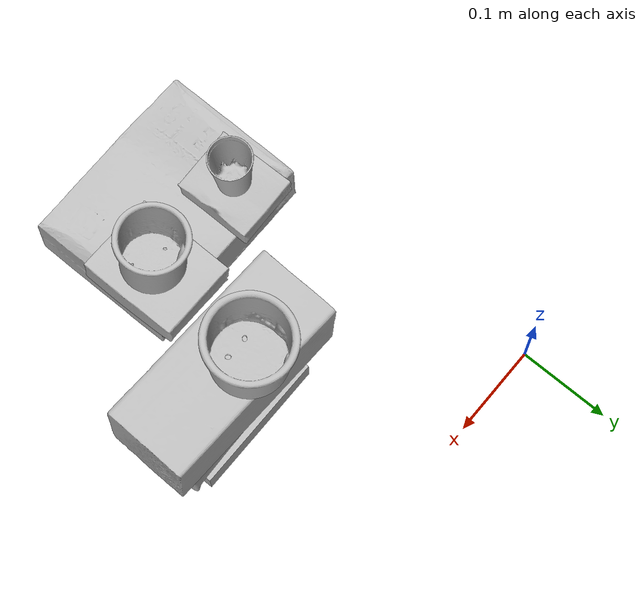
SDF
<?xml version="1.0" ?>
<sdf version="1.4">

  <world name="default">

    <light name="light1" type="point">

      <pose>0 0 1 0 0 0</pose>

      <diffuse>3 3 3 1</diffuse>

      <specular>3 3 3 1</specular>

    </light>

    <light name="light2" type="point">

      <pose>0 0.5 2 0 0 0</pose>

      <diffuse>1 1 1 1</diffuse>

      <specular>1 1 1 1</specular>

    </light>

    <light name="light3" type="point">

      <pose>0 0.5 2 0 0 0</pose>

      <diffuse>3 3 3 1</diffuse>

      <specular>3 3 3 1</specular>

    </light>

    <scene>

      <ambient>0.7 0.7 0.7</ambient>

    </scene>

    <model name="box21">

      <link name="link_box21">

        <collision name="default">

          <geometry>

            <mesh>

              <uri>model://cracker_box/collision_meshes/collision.obj</uri>

              <scale>1.0 1.0 1.0</scale>

            </mesh>

          </geometry>

          <surface>

            <friction>

              <ode>

                <mu>0.5</mu>

                <mu2>0.5</mu2>

              </ode>

            </friction>

          </surface>

        </collision>

        <visual name="default">

          <geometry>

            <mesh>

              <uri>model://cracker_box/visual_meshes/visual.dae</uri>

              <scale>1.0 1.0 1.0</scale>

            </mesh>

          </geometry>

        </visual>

        <inertial>

          <mass>2.590176582336426</mass>

          <pose>0.0009464152390137315 0.00025434247800149024 -0.0017029535956680775 -0.0003162072774594163 -0.011106486806667554 0.0025467954652388498</pose>

          <inertia>

            <ixx>0.0065882523</ixx>

            <iyy>0.0108785</iyy>

            <izz>0.015524619</izz>

            <ixy>0</ixy>

            <ixz>0</ixz>

            <iyz>0</iyz>

          </inertia>

        </inertial>

      </link>

      <pose>0.1198326125741005 -0.36929503083229065 0.03638412058353424 -0.014051527240577052 -0.005015717778087494 0.00038083210782525947</pose>

    </model>

    <model name="box22">

      <link name="link_box22">

        <collision name="default">

          <geometry>

            <mesh>

              <uri>model://gelatin_box/collision_meshes/collision.obj</uri>

              <scale>1.0 1.0 1.0</scale>

            </mesh>

          </geometry>

          <surface>

            <friction>

              <ode>

                <mu>0.5</mu>

                <mu2>0.5</mu2>

              </ode>

            </friction>

          </surface>

        </collision>

        <visual name="default">

          <geometry>

            <mesh>

              <uri>model://gelatin_box/visual_meshes/visual.dae</uri>

              <scale>1.0 1.0 1.0</scale>

            </mesh>

          </geometry>

        </visual>

        <inertial>

          <mass>0.25047940015792847</mass>

          <pose>0.0004319618456065655 0.00011156871914863586 -0.0003640321083366871 -0.0010503719848663328 -0.004755819155031653 0.016440561334722496</pose>

          <inertia>

            <ixx>0.00017681804</ixx>

            <iyy>0.00012630019</iyy>

            <izz>0.0002691564</izz>

            <ixy>0</ixy>

            <ixz>0</ixz>

            <iyz>0</iyz>

          </inertia>

        </inertial>

      </link>

      <pose>0.0705680251121521 -0.3198525607585907 0.08211785554885864 -0.005468137814721039 0.07062875259898165 0.0006597435246020395</pose>

    </model>

    <model name="box23">

      <link name="link_box23">

        <collision name="default">

          <geometry>

            <mesh>

              <uri>model://pudding_box/collision_meshes/collision.obj</uri>

              <scale>1.0 1.0 1.0</scale>

            </mesh>

          </geometry>

          <surface>

            <friction>

              <ode>

                <mu>0.5</mu>

                <mu2>0.5</mu2>

              </ode>

            </friction>

          </surface>

        </collision>

        <visual name="default">

          <geometry>

            <mesh>

              <uri>model://pudding_box/visual_meshes/visual.dae</uri>

              <scale>1.0 1.0 1.0</scale>

            </mesh>

          </geometry>

        </visual>

        <inertial>

          <mass>0.39469316601753235</mass>

          <pose>0.0004894821904599667 0.000806788622867316 -0.0005188827635720372 0.005213100892100292 -0.006603796836808699 0.020079821441474487</pose>

          <inertia>

            <ixx>0.00044618026</ixx>

            <iyy>0.00030019323</iyy>

            <izz>0.00065890176</izz>

            <ixy>0</ixy>

            <ixz>0</ixz>

            <iyz>0</iyz>

          </inertia>

        </inertial>

      </link>

      <pose>0.18824295699596405 -0.3191124498844147 0.09044484049081802 -0.039034177417752565 -0.06288524455731433 0.0028456294848534474</pose>

    </model>

    <model name="cup1">

      <link name="link_cup1">

        <collision name="default">

          <geometry>

            <mesh>

              <uri>model://cup_small/collision_meshes/collision.obj</uri>

              <scale>1.0 1.0 1.0</scale>

            </mesh>

          </geometry>

          <surface>

            <friction>

              <ode>

                <mu>0.5</mu>

                <mu2>0.5</mu2>

              </ode>

            </friction>

          </surface>

        </collision>

        <visual name="default">

          <geometry>

            <mesh>

              <uri>model://cup_small/visual_meshes/visual.dae</uri>

              <scale>1.0 1.0 1.0</scale>

            </mesh>

          </geometry>

        </visual>

        <inertial>

          <mass>0.021035347133874893</mass>

          <pose>0.0001048244594130665 -0.0003377834218554199 -0.010742821730673313 -0.011493211249102088 -0.015280240526329824 -0.5058153233609384</pose>

          <inertia>

            <ixx>1.2385285e-05</ixx>

            <iyy>1.2449176e-05</iyy>

            <izz>5.591994e-06</izz>

            <ixy>0</ixy>

            <ixz>0</ixz>

            <iyz>0</iyz>

          </inertia>

        </inertial>

      </link>

      <pose>0.07155513763427734 -0.3195272982120514 0.13143686950206757 -0.02067331135283892 0.04488877064019743 -0.0015517025719755124</pose>

    </model>

    <model name="cup2">

      <link name="link_cup2">

        <collision name="default">

          <geometry>

            <mesh>

              <uri>model://e_cups/collision_meshes/collision.obj</uri>

              <scale>1.0 1.0 1.0</scale>

            </mesh>

          </geometry>

          <surface>

            <friction>

              <ode>

                <mu>0.5</mu>

                <mu2>0.5</mu2>

              </ode>

            </friction>

          </surface>

        </collision>

        <visual name="default">

          <geometry>

            <mesh>

              <uri>model://e_cups/visual_meshes/visual.dae</uri>

              <scale>1.0 1.0 1.0</scale>

            </mesh>

          </geometry>

        </visual>

        <inertial>

          <mass>0.053841520100831985</mass>

          <pose>0.0011355747701600194 0.0028797851409763098 -0.0038829720579087734 0.69523823542345 0.08767615215021585 -0.5235238319868403</pose>

          <inertia>

            <ixx>4.7474743e-05</ixx>

            <iyy>4.9617902e-05</iyy>

            <izz>4.5391338e-05</izz>

            <ixy>0</ixy>

            <ixz>0</ixz>

            <iyz>0</iyz>

          </inertia>

        </inertial>

      </link>

      <pose>0.18630793690681458 -0.3194305896759033 0.14437247812747955 -0.022592708276673888 -0.08936504323820361 0.004720916987770119</pose>

    </model>

    <model name="box11">

      <link name="link_box11">

        <collision name="default">

          <geometry>

            <mesh>

              <uri>model://jenga/collision_meshes/collision.obj</uri>

              <scale>1.0 1.0 1.0</scale>

            </mesh>

          </geometry>

          <surface>

            <friction>

              <ode>

                <mu>0.5</mu>

                <mu2>0.5</mu2>

              </ode>

            </friction>

          </surface>

        </collision>

        <visual name="default">

          <geometry>

            <mesh>

              <uri>model://jenga/visual_meshes/visual.dae</uri>

              <scale>1.0 1.0 1.0</scale>

            </mesh>

          </geometry>

        </visual>

        <inertial>

          <mass>0.26362571120262146</mass>

          <pose>-2.502855807051674e-07 -0.00010250010382151231 -4.0923401684267446e-05 0.0 -7.342155186052628e-07 0.0</pose>

          <inertia>

            <ixx>7.295163e-05</ixx>

            <iyy>0.0004943182</iyy>

            <izz>0.0005277267</izz>

            <ixy>0</ixy>

            <ixz>0</ixz>

            <iyz>0</iyz>

          </inertia>

        </inertial>

      </link>

      <pose>0.23001092672348022 -0.1797076016664505 0.014990141615271568 0.0005034518324587869 2.40617550294219e-05 -0.00038723762483633216</pose>

    </model>

    <model name="box12">

      <link name="link_box12">

        <collision name="default">

          <geometry>

            <mesh>

              <uri>model://rubiks_cube/collision_meshes/collision.obj</uri>

              <scale>1.0 1.0 1.0</scale>

            </mesh>

          </geometry>

          <surface>

            <friction>

              <ode>

                <mu>0.5</mu>

                <mu2>0.5</mu2>

              </ode>

            </friction>

          </surface>

        </collision>

        <visual name="default">

          <geometry>

            <mesh>

              <uri>model://rubiks_cube/visual_meshes/visual.dae</uri>

              <scale>1.0 1.0 1.0</scale>

            </mesh>

          </geometry>

        </visual>

        <inertial>

          <mass>0.2476155012845993</mass>

          <pose>2.6721041649580002e-05 5.256966323941015e-05 -7.2643156272533815e-06 -0.05467269607811095 -0.09813983501015876 -0.034455733913541106</pose>

          <inertia>

            <ixx>0.00013682418</ixx>

            <iyy>0.0001361861</iyy>

            <izz>0.00013795799</izz>

            <ixy>0</ixy>

            <ixz>0</ixz>

            <iyz>0</iyz>

          </inertia>

        </inertial>

      </link>

      <pose>0.23182284832000732 -0.1924385279417038 0.058560822159051895 0.0009024420522107252 0.0006278735512768219 0.042564570149417356</pose>

    </model>

    <model name="box13">

      <link name="link_box13">

        <collision name="default">

          <geometry>

            <mesh>

              <uri>model://sugar_box/collision_meshes/collision.obj</uri>

              <scale>1.0 1.0 1.0</scale>

            </mesh>

          </geometry>

          <surface>

            <friction>

              <ode>

                <mu>0.5</mu>

                <mu2>0.5</mu2>

              </ode>

            </friction>

          </surface>

        </collision>

        <visual name="default">

          <geometry>

            <mesh>

              <uri>model://sugar_box/visual_meshes/visual.dae</uri>

              <scale>1.0 1.0 1.0</scale>

            </mesh>

          </geometry>

        </visual>

        <inertial>

          <mass>0.6861893534660339</mass>

          <pose>0.0010343727190047503 3.849109634757042e-05 -0.0003636480250861496 -0.00040462627129080113 0.001050663522124822 0.0026153787889376494</pose>

          <inertia>

            <ixx>0.0005717311</ixx>

            <iyy>0.0018479523</iyy>

            <izz>0.0022122194</izz>

            <ixy>0</ixy>

            <ixz>0</ixz>

            <iyz>0</iyz>

          </inertia>

        </inertial>

      </link>

      <pose>0.24382387101650238 -0.19434064626693726 0.1100630983710289 -0.020432363474438824 -0.0030866056904968486 0.030636170394865103</pose>

    </model>

    <model name="box14">

      <link name="link_box14">

        <collision name="default">

          <geometry>

            <mesh>

              <uri>model://wood_block/collision_meshes/collision.obj</uri>

              <scale>1.0 1.0 1.0</scale>

            </mesh>

          </geometry>

          <surface>

            <friction>

              <ode>

                <mu>0.5</mu>

                <mu2>0.5</mu2>

              </ode>

            </friction>

          </surface>

        </collision>

        <visual name="default">

          <geometry>

            <mesh>

              <uri>model://wood_block/visual_meshes/visual.dae</uri>

              <scale>1.0 1.0 1.0</scale>

            </mesh>

          </geometry>

        </visual>

        <inertial>

          <mass>2.2081377506256104</mass>

          <pose>-5.813315965497168e-06 -0.000570809468626976 0.00026408585836179554 -0.052206634003801496 -0.0051926960857359 -0.00686137798931887</pose>

          <inertia>

            <ixx>0.0029548227</ixx>

            <iyy>0.009334286</iyy>

            <izz>0.0092993695</izz>

            <ixy>0</ixy>

            <ixz>0</ixz>

            <iyz>0</iyz>

          </inertia>

        </inertial>

      </link>

      <pose>0.23922620713710785 -0.18304754793643951 0.17719992995262146 -0.022872337848450327 -0.0223867857941524 -0.029409604610335986</pose>

    </model>

    <model name="cup15">

      <link name="link_cup15">

        <collision name="default">

          <geometry>

            <mesh>

              <uri>model://g_cups/collision_meshes/collision.obj</uri>

              <scale>1.0 1.0 1.0</scale>

            </mesh>

          </geometry>

          <surface>

            <friction>

              <ode>

                <mu>0.5</mu>

                <mu2>0.5</mu2>

              </ode>

            </friction>

          </surface>

        </collision>

        <visual name="default">

          <geometry>

            <mesh>

              <uri>model://g_cups/visual_meshes/visual.dae</uri>

              <scale>1.0 1.0 1.0</scale>

            </mesh>

          </geometry>

        </visual>

        <inertial>

          <mass>0.09534990042448044</mass>

          <pose>-0.000794626830611378 -4.206429366604425e-05 -0.002132937079295516 -0.21382187015428292 -0.3141046168173621 0.3112040328096479</pose>

          <inertia>

            <ixx>0.00011129469</ixx>

            <iyy>0.0001109161</iyy>

            <izz>0.00011528214</izz>

            <ixy>0</ixy>

            <ixz>0</ixz>

            <iyz>0</iyz>

          </inertia>

        </inertial>

      </link>

      <pose>0.22176937758922577 -0.16275310516357422 0.25889477133750916 -0.03131635658144013 -0.028099896446293716 -0.11942558739403329</pose>

    </model>

  </world>

</sdf>
